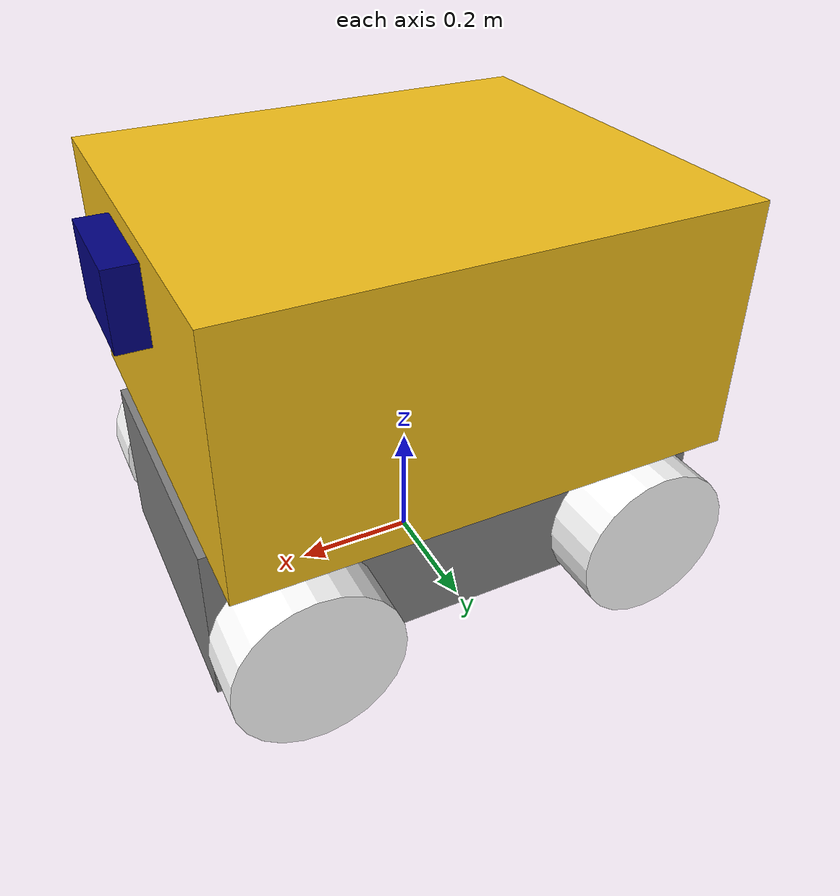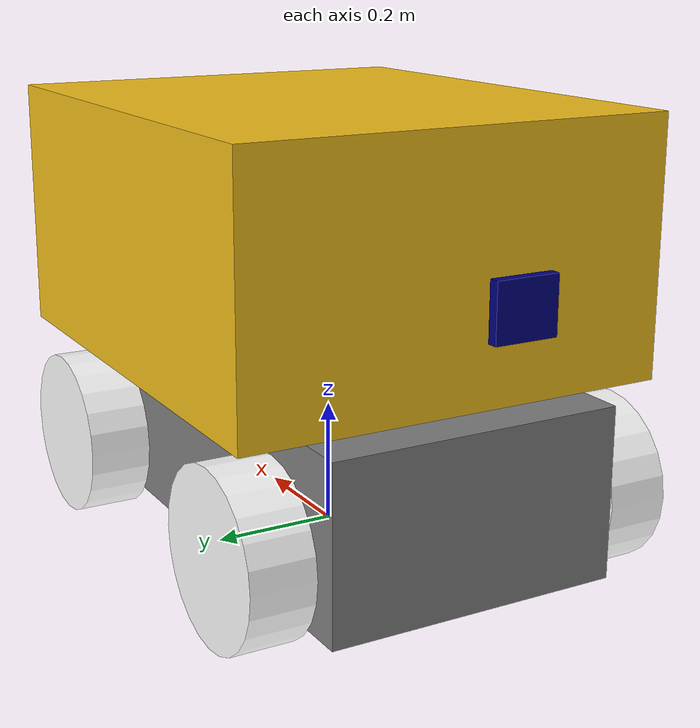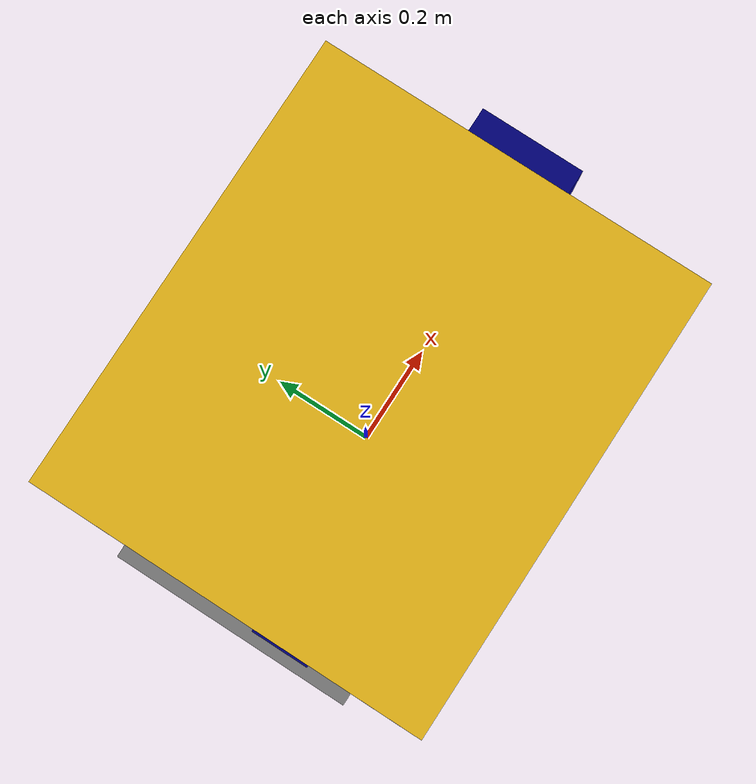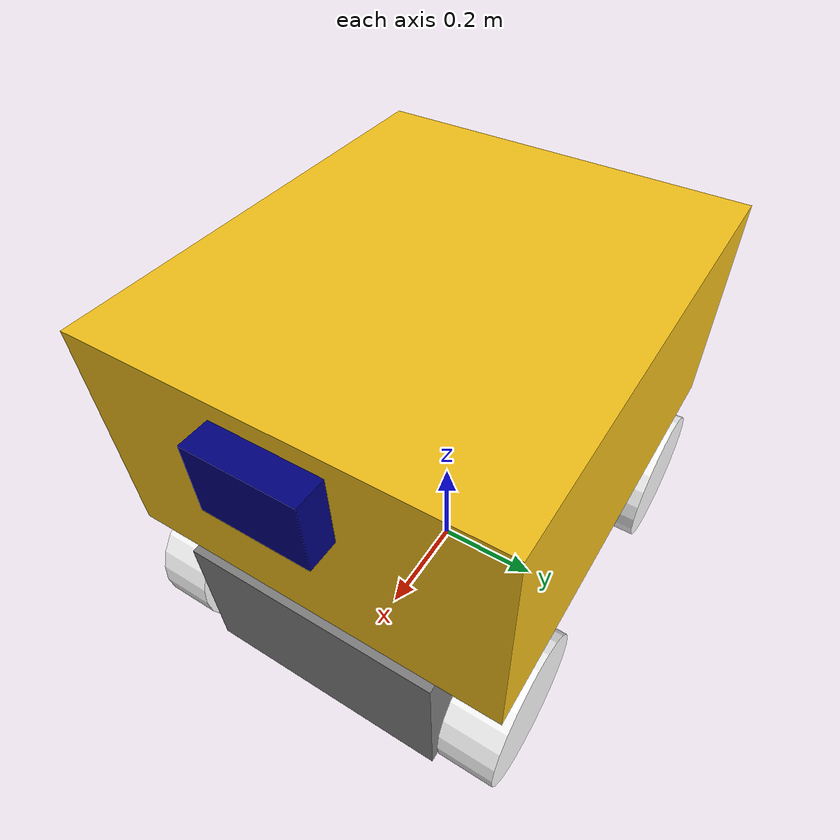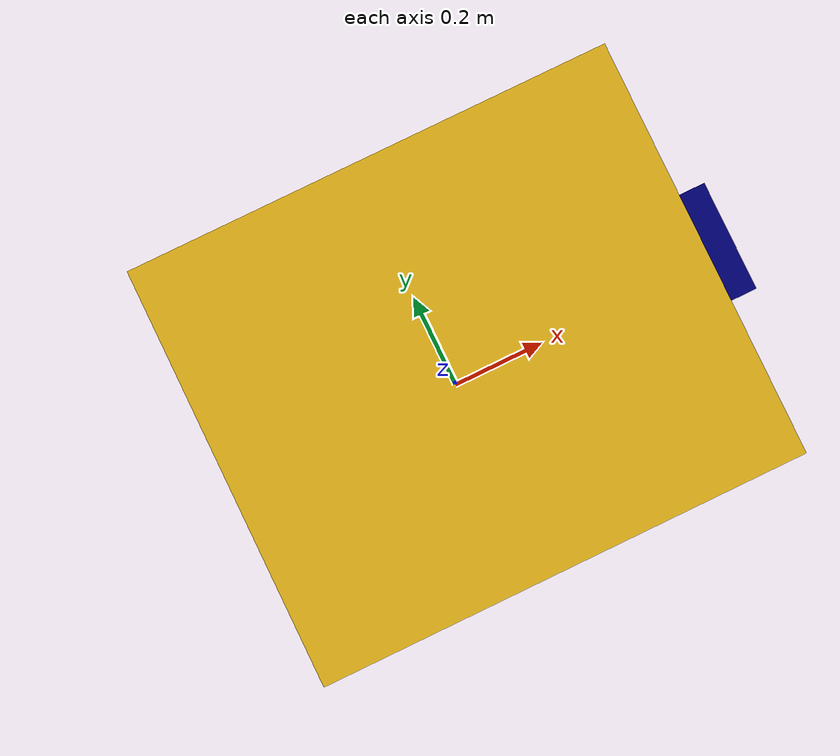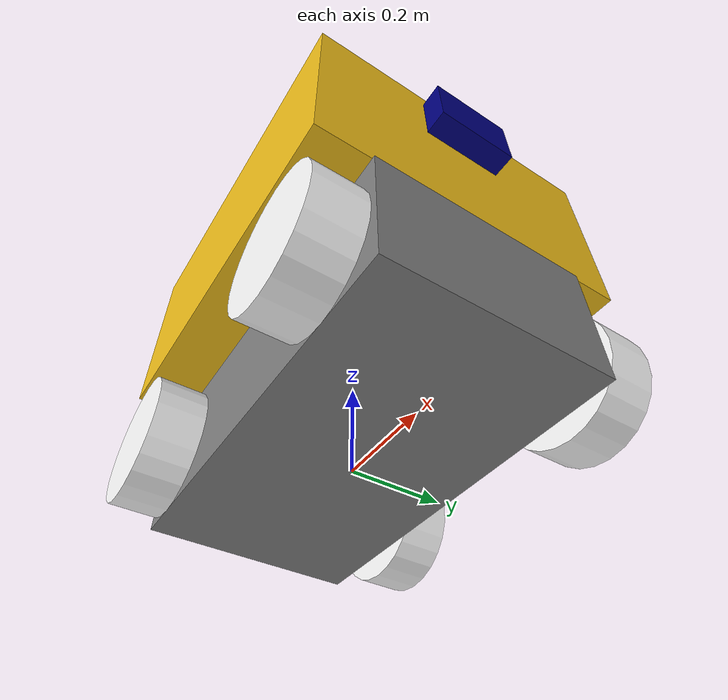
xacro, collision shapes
<?xml version="1.0"?>
<robot name="msd700_dump" xmlns:xacro="http://ros.org/wiki/xacro">

    <xacro:include filename="$(find msd700_dump_V2)/urdf/model_4/common/msd700_wheel.xacro"/>
    <xacro:include filename="$(find msd700_dump_V2)/urdf/model_4/common/msd700_base_stl.xacro"/>
    <xacro:include filename="$(find msd700_dump_V2)/urdf/model_4/attachment/msd700_dump.xacro"/>
    <xacro:include filename="$(find msd700_dump_V2)/urdf/model_4/sensors/sensor_e1r.xacro"/>
    <xacro:include filename="$(find msd700_dump_V2)/urdf/model_4/sensors/sensor_airy.xacro"/>

    <xacro:property name="base_top_z" value="0.2246" />

<!-- BASE  -->
    <link name="base_footprint"/>
    <xacro:base name="base" parent="base_footprint" xyz="0 0 0.05" rpy="0 0 0"/>

<!-- for the WHEELS -->
    <xacro:wheel name="wheel_fl" parent="base_link" xyz="0.305 0.30 0.065" rpy="0 0 0"/>
    <xacro:wheel name="wheel_fr" parent="base_link" xyz="0.305 -0.30 0.065" rpy="0 0 0"/>
    <xacro:wheel name="wheel_rl" parent="base_link" xyz="-0.285 0.30 0.065" rpy="0 0 0"/>
    <xacro:wheel name="wheel_rr" parent="base_link" xyz="-0.285 -0.30 0.065" rpy="0 0 0"/>

<!-- for the Dump section -->
    <xacro:dump name="dump" parent="base_link" xyz="0.02 0 ${base_top_z}" rpy="0 0 0"/>

<!-- Sensor section -->
    <xacro:e1r name="e1r_lidar" parent="base_link" xyz="0.429 0 ${base_top_z + 0.33}" rpy="${pi} ${pi} ${pi}"/>

    <!-- Airy sensor -->
    <xacro:airy name="airy_lidar" parent="base_link" xyz="-0.35 -0.095 0.39" rpy="${pi} 0 ${pi/2}"/>

</robot>

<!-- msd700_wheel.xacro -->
<robot xmlns:xacro="http://ros.org/wiki/xacro">

    <xacro:property name="wheel_weight"  value="3.5" />
    <xacro:property name="wheel_diameter"  value="0.271" />
    <xacro:property name="wheel_length"  value="0.100" />
    <xacro:macro name="wheel" params="
        name
        parent
        xyz
        rpy">

        <!-- Joint -->
        <joint name="${name}_joint" type="continuous">
            <parent link="${parent}"/>
            <child link="${name}_link"/>
            <origin xyz="${xyz}" rpy="${rpy}"/>
            <axis xyz="0 1 0"/>
        </joint>

        <!-- Link -->
        <link name="${name}_link">
            <visual>
                <origin xyz="${(wheel_diameter/2)-0.025} ${-(wheel_length/2)+0.01} ${-((wheel_diameter/2))+0.025}" rpy="0 0 ${pi/2}"/>
                <geometry>
                    <mesh filename="package://msd700_dump_V2/meshes/wheel.stl"
                            scale="0.001 0.001 0.001"/>
                </geometry>
                <material name="White">
                    <color rgba="1 1 1 1.0"/>
                </material>
            </visual>

            <collision>
                <origin xyz="0 0 0" rpy="${pi/2} ${pi/2} 0"/>
                <geometry>
                    <cylinder radius="${(wheel_diameter/2)}" length="${wheel_length}"/>
                </geometry>
            </collision>

            <inertial>
                <origin xyz="0 0 0" rpy="${pi/2} 0 0"/>
                <mass value="${wheel_weight}"/>
                <inertia
                    ixx="0.0153"
                    iyy="0.0153"
                    izz="0.0280"
                    ixy="0" ixz="0" iyz="0"/>
            </inertial>
        </link>

        <!-- Gazebo friction: mu1=longitudinal (grip), mu2=lateral (low for skid-steer slip) -->
        <gazebo reference="${name}_link">
            <mu1>1.0</mu1>
            <mu2>0.1</mu2>
            <slip1>0.0</slip1>
            <slip2>0.5</slip2>
            <kp>1e6</kp>
            <kd>10</kd>
        </gazebo>

        <!-- Transmission for ros_control -->
        <transmission name="${name}_trans">
            <type>transmission_interface/SimpleTransmission</type>
            <joint name="${name}_joint">
                <hardwareInterface>hardware_interface/VelocityJointInterface</hardwareInterface>
            </joint>
            <actuator name="${name}_motor">
                <hardwareInterface>hardware_interface/VelocityJointInterface</hardwareInterface>
                <mechanicalReduction>1</mechanicalReduction>
            </actuator>
        </transmission>
    </xacro:macro>
</robot>

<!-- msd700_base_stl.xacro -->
<robot xmlns:xacro="http://ros.org/wiki/xacro">
    <!-- From MCLA015B spec -->
    <xacro:property name="base_weight"  value="121.9" />
    <xacro:property name="base_width"  value="0.47" />
    <xacro:property name="base_length"   value="0.866" />
    <xacro:property name="base_height"  value="0.271" />
    <xacro:macro name="base" params="
        name
        parent
        xyz
        rpy">

        <!-- Joint -->
        <joint name="${name}_joint" type="fixed">
            <parent link="${parent}"/>
            <child link="${name}_link"/>
            <origin xyz="${xyz}" rpy="${rpy}"/>
        </joint>

        <!-- Link -->
        <link name="${name}_link">
            <visual>
                <origin xyz="${base_length/2} ${base_width/2+(0.715-base_width)/2} -0.07" rpy="${pi/2} 0 -${pi/2}"/>
                <geometry>
                    <mesh filename="package://msd700_dump_V2/meshes/body_only.stl"
                        scale="0.001 0.001 0.001"/>
                </geometry>
                <material name="grey">
                    <color rgba="0.5 0.5 0.5 1"/>
                </material>
            </visual>
            <visual>
                <origin xyz="${base_length/2} ${base_width/2+(0.715-base_width)/2} -0.07" rpy="${pi/2} 0 -${pi/2}"/>
                <geometry>
                    <mesh filename="package://msd700_dump_V2/meshes/track_only.stl"
                        scale="0.001 0.001 0.001"/>
                </geometry>
                <material name="dark_grey">
                    <color rgba="0 0 0 1"/>
                </material>
            </visual>
            <collision>
                <origin xyz="0 0 0.1" rpy="0 0 0"/>
                <geometry>
                    <box size="${base_length} ${base_width} ${base_height}"/>
                </geometry>
            </collision>
            <inertial>
                <mass value="${base_weight}"/>
                <origin xyz="0 0 0.1" rpy="0 0 0"/>
                <!-- the inertial matrix approximated as a box -->
                <!-- https://en.wikipedia.org/wiki/List_of_moments_of_inertia -->
                <inertia
                    ixx="${(base_weight/12)*(base_width*base_width + base_height*base_height)}"   ixy="0.0" ixz="0.0"
                    iyy="${(base_weight/12)*(base_length*base_length + base_height*base_height)}" iyz="0.0"
                    izz="${(base_weight/12)*(base_length*base_length + base_width*base_width)}"/>
            </inertial>
        </link>
    </xacro:macro>
</robot>

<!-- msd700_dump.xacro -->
<robot xmlns:xacro="http://ros.org/wiki/xacro">
    <!-- Dimensions measured from the solid works-->
    <xacro:property name="dump_weight"  value="50" />   <!-- from the mass properties in SW -->
    <xacro:property name="dump_length"  value="0.805" />
    <xacro:property name="dump_width"   value="0.693" />
    <xacro:property name="dump_height"  value="0.405" />

    <!-- the SW models uses Y-up model but in the Rviz uses the Z-up model -->
    <xacro:macro name="dump" params="
        name
        parent
        xyz
        rpy">

        <joint name="${name}_joint" type="fixed">
            <parent link="${parent}"/>
            <child link="${name}_link"/>
            <origin xyz="${xyz}" rpy="${rpy}"/>
        </joint>

        <link name="${name}_link">
            <visual>
                <origin xyz="0.4059 0.35 0" rpy="${pi/2} 0 -${pi/2}"/>
                <geometry>
                    <mesh filename="package://msd700_dump_V2/meshes/MCLA021A_dump_only.STL"
                        scale="0.001 0.001 0.001"/>
                </geometry>
                <material name="DumpYellow">
                    <color rgba="0.95 0.75 0.1 1.0"/>
                </material>
            </visual>
            <collision>
                <origin xyz="0 0 ${dump_height/2+0.02}" rpy="0 0 0"/>
                <geometry>
                    <box size="${dump_length} ${dump_width} ${dump_height}"/>
                </geometry>
            </collision>
            <inertial>
                <origin xyz="0 0 ${dump_height/2}" rpy="0 0 0"/>
                <mass value="${dump_weight}"/>
                <!-- the inertial matrix approximated as a box -->
                <inertia
                    ixx="${(dump_weight/12)*(dump_width*dump_width + dump_height*dump_height)}"   ixy="0.0" ixz="0.0"
                    iyy="${(dump_weight/12)*(dump_length*dump_length + dump_height*dump_height)}" iyz="0.0"
                    izz="${(dump_weight/12)*(dump_length*dump_length + dump_width*dump_width)}"/>
            </inertial>
        </link>
    </xacro:macro>
</robot>

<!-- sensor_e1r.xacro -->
<robot xmlns:xacro="http://ros.org/wiki/xacro">
    <!-- RoboSense E1R lidar (MCLA022A_E1R_LIDAR.STL, includes the mount bracket) -->
    <!-- Head dimensions measured from the STL -->
    <xacro:property name="e1r_weight"  value="0.33" />   <!-- TODO: real mass -->
    <xacro:property name="e1r_length"  value="0.089" />
    <xacro:property name="e1r_width"   value="0.182" />
    <xacro:property name="e1r_height"  value="0.125" />

    <xacro:macro name="e1r" params="
        name
        parent
        xyz
        rpy">

        <joint name="${name}_joint" type="fixed">
            <parent link="${parent}"/>
            <child link="${name}"/>
            <origin xyz="${xyz}" rpy="${rpy}"/>
        </joint>

        <link name="${name}">
            <visual>
                <origin xyz="0.08 0.092 -0.55" rpy="${pi/2} 0 -${pi/2}"/>
                <geometry>
                    <mesh filename="package://msd700_dump_V2/meshes/MCLA022A_E1R_LIDAR.STL"
                        scale="0.001 0.001 0.001"/>
                </geometry>
                <material name="NavyBlue">
                    <color rgba="0.0 0.0 0.5 1.0"/>
                </material>
            </visual>
            <collision>
                <origin xyz="0 0 0" rpy="0 0 0"/>
                <geometry>
                    <box size="${e1r_length} ${e1r_width} ${e1r_height}"/>
                </geometry>
            </collision>
            <inertial>
                <origin xyz="0 0 0" rpy="0 0 0"/>
                <mass value="${e1r_weight}"/>
                <!-- the inertial matrix approximated as a box -->
                <inertia
                    ixx="${(e1r_weight/12)*(e1r_width*e1r_width + e1r_height*e1r_height)}"   ixy="0.0" ixz="0.0"
                    iyy="${(e1r_weight/12)*(e1r_length*e1r_length + e1r_height*e1r_height)}" iyz="0.0"
                    izz="${(e1r_weight/12)*(e1r_length*e1r_length + e1r_width*e1r_width)}"/>
            </inertial>
        </link>
    </xacro:macro>
</robot>

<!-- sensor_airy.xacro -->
<robot xmlns:xacro="http://ros.org/wiki/xacro">
    <!-- RoboSense Airy lidar (MCLA022A_Airy_LIDAR.STL, includes the mount plate and bracket) -->
    <!-- Head dimensions measured from the STL -->
    <xacro:property name="airy_weight"  value="0.35" />   <!-- TODO: real mass -->
    <xacro:property name="airy_length"  value="0.106" />
    <xacro:property name="airy_width"   value="0.100" />
    <xacro:property name="airy_height"  value="0.094" />

    <xacro:macro name="airy" params="
        name
        parent
        xyz
        rpy">

        <joint name="${name}_joint" type="fixed">
            <parent link="${parent}"/>
            <child link="${name}"/>
            <origin xyz="${xyz}" rpy="${rpy}"/>
        </joint>

        <link name="${name}">
            <visual>
                <origin xyz="0.095 0.3303 0.3928" rpy="-${pi/2} 0 ${pi}"/>
                <geometry>
                    <mesh filename="package://msd700_dump_V2/meshes/MCLA022A_Airy_LIDAR.STL"
                        scale="0.001 0.001 0.001"/>
                </geometry>
                <material name="NavyBlue">
                    <color rgba="0.0 0.0 0.5 1.0"/>
                </material>
            </visual>
            <collision>
                <origin xyz="0 0 0" rpy="0 0 0"/>
                <geometry>
                    <box size="${airy_length} ${airy_width} ${airy_height}"/>
                </geometry>
            </collision>
            <inertial>
                <origin xyz="0 0 0" rpy="0 0 0"/>
                <mass value="${airy_weight}"/>
                <!-- the inertial matrix approximated as a box -->
                <inertia
                    ixx="${(airy_weight/12)*(airy_width*airy_width + airy_height*airy_height)}"   ixy="0.0" ixz="0.0"
                    iyy="${(airy_weight/12)*(airy_length*airy_length + airy_height*airy_height)}" iyz="0.0"
                    izz="${(airy_weight/12)*(airy_length*airy_length + airy_width*airy_width)}"/>
            </inertial>
        </link>
    </xacro:macro>
</robot>
